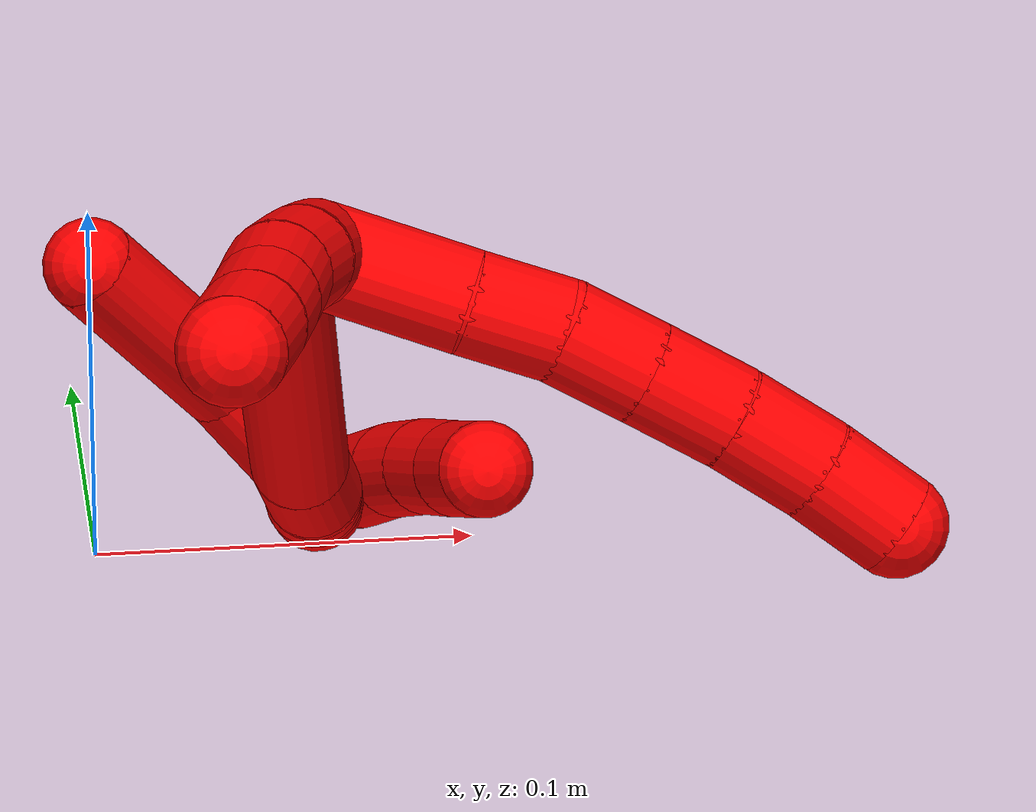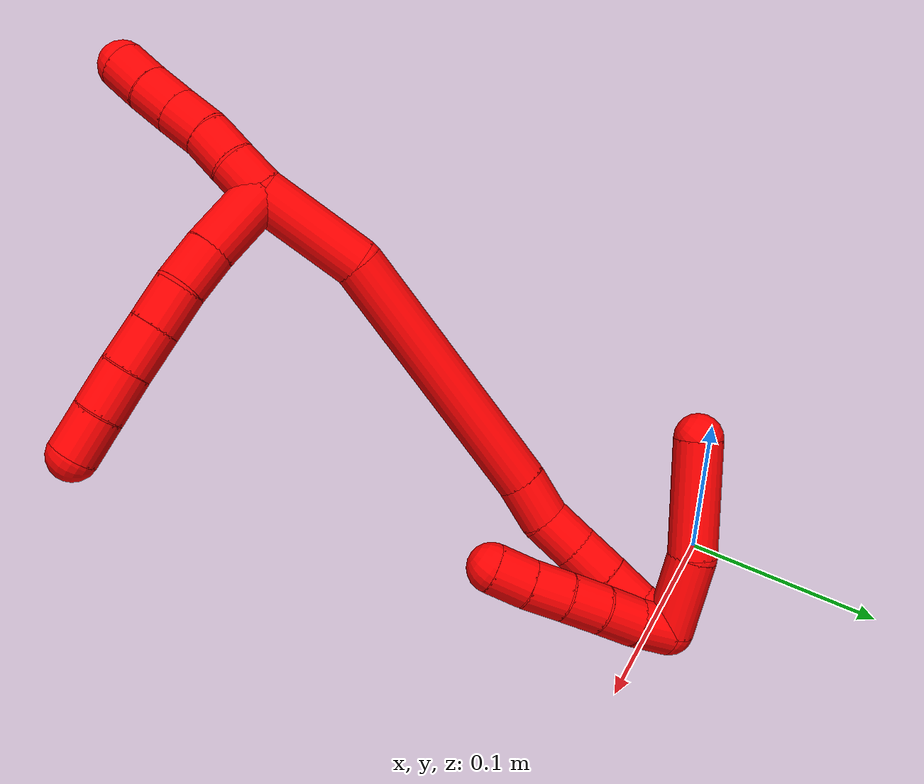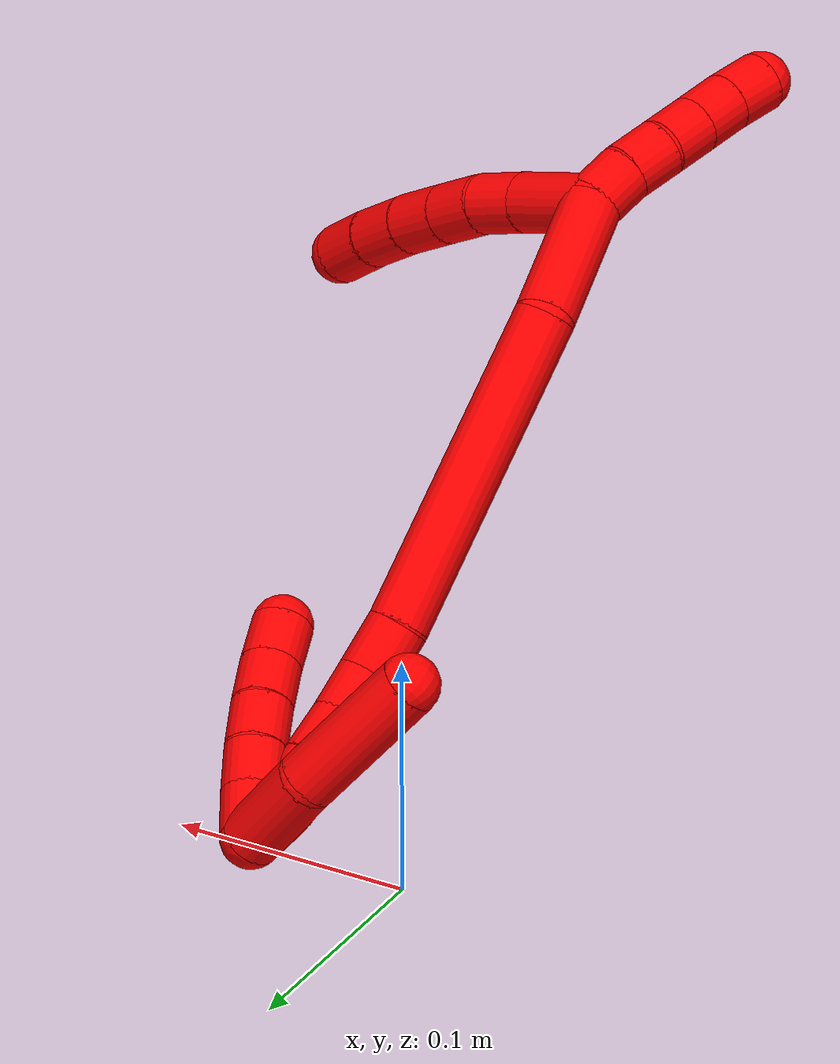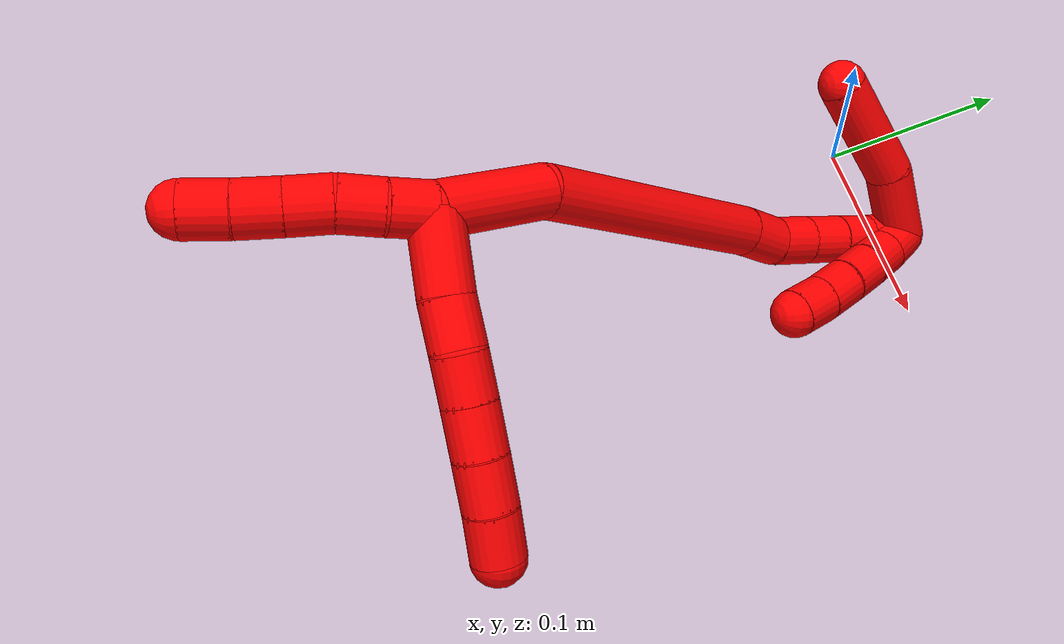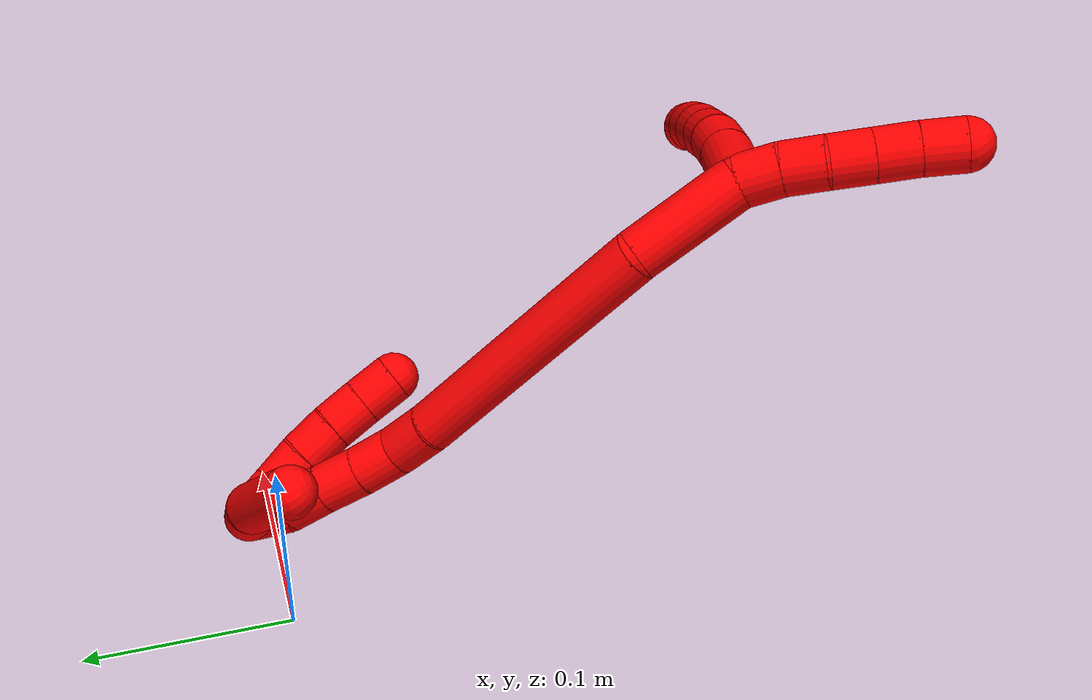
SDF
<sdf version="1.7">
 <world name="default">
  <model name="2">
   <static>0</static>
   <link name="2">
    <collision name="collision-cylinder-e_1_2_8">
     <pose>0.002097 -0.018207 0.000993 1.51633 0.114484 0.108425</pose>
     <geometry><cylinder><radius>0.0125</radius><length>0.036709</length></cylinder></geometry>
     <surface>
      <friction><ode><mu>1.16</mu><mu2>1.16</mu2><slip1>0</slip1><slip2>0</slip2></ode></friction>
      <contact><ode><kp>1e+06</kp><kd>1</kd><max_vel>0</max_vel><min_depth>0.001</min_depth></ode></contact>
     </surface>
    </collision>
    <visual name="visual-cylinder-e_1_2_8">
     <pose>0.002097 -0.018207 0.000993 1.51633 0.114484 0.108425</pose>
     <geometry><cylinder><radius>0.0125</radius><length>0.036709</length></cylinder></geometry>
     <material><ambient>1 0 0 1</ambient></material>
    </visual>
    <collision name="collision-cylinder-e_2_8_9">
     <pose>0.005669 -0.04754 0.001675 1.59868 0.131846 0.135563</pose>
     <geometry><cylinder><radius>0.0125</radius><length>0.022454</length></cylinder></geometry>
     <surface>
      <friction><ode><mu>1.16</mu><mu2>1.16</mu2><slip1>0</slip1><slip2>0</slip2></ode></friction>
      <contact><ode><kp>1e+06</kp><kd>1</kd><max_vel>0</max_vel><min_depth>0.001</min_depth></ode></contact>
     </surface>
    </collision>
    <visual name="visual-cylinder-e_2_8_9">
     <pose>0.005669 -0.04754 0.001675 1.59868 0.131846 0.135563</pose>
     <geometry><cylinder><radius>0.0125</radius><length>0.022454</length></cylinder></geometry>
     <material><ambient>1 0 0 1</ambient></material>
    </visual>
    <collision name="collision-cylinder-e_3_9_10">
     <pose>0.006763 -0.069457 0.00051 1.64986 -0.035287 -0.038192</pose>
     <geometry><cylinder><radius>0.0125</radius><length>0.021665</length></cylinder></geometry>
     <surface>
      <friction><ode><mu>1.16</mu><mu2>1.16</mu2><slip1>0</slip1><slip2>0</slip2></ode></friction>
      <contact><ode><kp>1e+06</kp><kd>1</kd><max_vel>0</max_vel><min_depth>0.001</min_depth></ode></contact>
     </surface>
    </collision>
    <visual name="visual-cylinder-e_3_9_10">
     <pose>0.006763 -0.069457 0.00051 1.64986 -0.035287 -0.038192</pose>
     <geometry><cylinder><radius>0.0125</radius><length>0.021665</length></cylinder></geometry>
     <material><ambient>1 0 0 1</ambient></material>
    </visual>
    <collision name="collision-cylinder-e_4_10_11">
     <pose>0.00583 -0.091737 -0.0012 1.64499 -0.047827 -0.051513</pose>
     <geometry><cylinder><radius>0.0125</radius><length>0.023067</length></cylinder></geometry>
     <surface>
      <friction><ode><mu>1.16</mu><mu2>1.16</mu2><slip1>0</slip1><slip2>0</slip2></ode></friction>
      <contact><ode><kp>1e+06</kp><kd>1</kd><max_vel>0</max_vel><min_depth>0.001</min_depth></ode></contact>
     </surface>
    </collision>
    <visual name="visual-cylinder-e_4_10_11">
     <pose>0.00583 -0.091737 -0.0012 1.64499 -0.047827 -0.051513</pose>
     <geometry><cylinder><radius>0.0125</radius><length>0.023067</length></cylinder></geometry>
     <material><ambient>1 0 0 1</ambient></material>
    </visual>
    <collision name="collision-cylinder-e_5_11_12">
     <pose>0.003953 -0.114764 -0.003109 1.66203 -0.113909 -0.12478</pose>
     <geometry><cylinder><radius>0.0125</radius><length>0.023325</length></cylinder></geometry>
     <surface>
      <friction><ode><mu>1.16</mu><mu2>1.16</mu2><slip1>0</slip1><slip2>0</slip2></ode></friction>
      <contact><ode><kp>1e+06</kp><kd>1</kd><max_vel>0</max_vel><min_depth>0.001</min_depth></ode></contact>
     </surface>
    </collision>
    <visual name="visual-cylinder-e_5_11_12">
     <pose>0.003953 -0.114764 -0.003109 1.66203 -0.113909 -0.12478</pose>
     <geometry><cylinder><radius>0.0125</radius><length>0.023325</length></cylinder></geometry>
     <material><ambient>1 0 0 1</ambient></material>
    </visual>
    <collision name="collision-cylinder-e_6_12_6">
     <pose>0.000531 -0.137458 -0.005115 1.65577 -0.185105 -0.201436</pose>
     <geometry><cylinder><radius>0.0125</radius><length>0.022781</length></cylinder></geometry>
     <surface>
      <friction><ode><mu>1.16</mu><mu2>1.16</mu2><slip1>0</slip1><slip2>0</slip2></ode></friction>
      <contact><ode><kp>1e+06</kp><kd>1</kd><max_vel>0</max_vel><min_depth>0.001</min_depth></ode></contact>
     </surface>
    </collision>
    <visual name="visual-cylinder-e_6_12_6">
     <pose>0.000531 -0.137458 -0.005115 1.65577 -0.185105 -0.201436</pose>
     <geometry><cylinder><radius>0.0125</radius><length>0.022781</length></cylinder></geometry>
     <material><ambient>1 0 0 1</ambient></material>
    </visual>
    <collision name="collision-cylinder-e_1_2_13">
     <pose>-0.001292 0.001814 0.009749 -0.183991 -0.129541 0.011968</pose>
     <geometry><cylinder><radius>0.0125</radius><length>0.02</length></cylinder></geometry>
     <surface>
      <friction><ode><mu>1.16</mu><mu2>1.16</mu2><slip1>0</slip1><slip2>0</slip2></ode></friction>
      <contact><ode><kp>1e+06</kp><kd>1</kd><max_vel>0</max_vel><min_depth>0.001</min_depth></ode></contact>
     </surface>
    </collision>
    <visual name="visual-cylinder-e_1_2_13">
     <pose>-0.001292 0.001814 0.009749 -0.183991 -0.129541 0.011968</pose>
     <geometry><cylinder><radius>0.0125</radius><length>0.02</length></cylinder></geometry>
     <material><ambient>1 0 0 1</ambient></material>
    </visual>
    <collision name="collision-cylinder-e_2_13_14">
     <pose>-0.005154 0.005744 0.028927 -0.220694 -0.259934 0.028961</pose>
     <geometry><cylinder><radius>0.0125</radius><length>0.02</length></cylinder></geometry>
     <surface>
      <friction><ode><mu>1.16</mu><mu2>1.16</mu2><slip1>0</slip1><slip2>0</slip2></ode></friction>
      <contact><ode><kp>1e+06</kp><kd>1</kd><max_vel>0</max_vel><min_depth>0.001</min_depth></ode></contact>
     </surface>
    </collision>
    <visual name="visual-cylinder-e_2_13_14">
     <pose>-0.005154 0.005744 0.028927 -0.220694 -0.259934 0.028961</pose>
     <geometry><cylinder><radius>0.0125</radius><length>0.02</length></cylinder></geometry>
     <material><ambient>1 0 0 1</ambient></material>
    </visual>
    <collision name="collision-cylinder-e_3_14_15">
     <pose>-0.010788 0.008519 0.047853 -0.069356 -0.311392 0.010891</pose>
     <geometry><cylinder><radius>0.0125</radius><length>0.02</length></cylinder></geometry>
     <surface>
      <friction><ode><mu>1.16</mu><mu2>1.16</mu2><slip1>0</slip1><slip2>0</slip2></ode></friction>
      <contact><ode><kp>1e+06</kp><kd>1</kd><max_vel>0</max_vel><min_depth>0.001</min_depth></ode></contact>
     </surface>
    </collision>
    <visual name="visual-cylinder-e_3_14_15">
     <pose>-0.010788 0.008519 0.047853 -0.069356 -0.311392 0.010891</pose>
     <geometry><cylinder><radius>0.0125</radius><length>0.02</length></cylinder></geometry>
     <material><ambient>1 0 0 1</ambient></material>
    </visual>
    <collision name="collision-cylinder-e_4_15_16">
     <pose>-0.016826 0.010005 0.066861 -0.08668 -0.302037 0.013199</pose>
     <geometry><cylinder><radius>0.0125</radius><length>0.02</length></cylinder></geometry>
     <surface>
      <friction><ode><mu>1.16</mu><mu2>1.16</mu2><slip1>0</slip1><slip2>0</slip2></ode></friction>
      <contact><ode><kp>1e+06</kp><kd>1</kd><max_vel>0</max_vel><min_depth>0.001</min_depth></ode></contact>
     </surface>
    </collision>
    <visual name="visual-cylinder-e_4_15_16">
     <pose>-0.016826 0.010005 0.066861 -0.08668 -0.302037 0.013199</pose>
     <geometry><cylinder><radius>0.0125</radius><length>0.02</length></cylinder></geometry>
     <material><ambient>1 0 0 1</ambient></material>
    </visual>
    <collision name="collision-cylinder-e_5_16_5">
     <pose>-0.023166 0.012108 0.085702 -0.135955 -0.343209 0.023597</pose>
     <geometry><cylinder><radius>0.0125</radius><length>0.02</length></cylinder></geometry>
     <surface>
      <friction><ode><mu>1.16</mu><mu2>1.16</mu2><slip1>0</slip1><slip2>0</slip2></ode></friction>
      <contact><ode><kp>1e+06</kp><kd>1</kd><max_vel>0</max_vel><min_depth>0.001</min_depth></ode></contact>
     </surface>
    </collision>
    <visual name="visual-cylinder-e_5_16_5">
     <pose>-0.023166 0.012108 0.085702 -0.135955 -0.343209 0.023597</pose>
     <geometry><cylinder><radius>0.0125</radius><length>0.02</length></cylinder></geometry>
     <material><ambient>1 0 0 1</ambient></material>
    </visual>
    <collision name="collision-cylinder-e_1_2_17">
     <pose>-0.004607 0.001115 -0.027323 -3.10081 -0.166917 2.66331</pose>
     <geometry><cylinder><radius>0.0125</radius><length>0.055462</length></cylinder></geometry>
     <surface>
      <friction><ode><mu>1.16</mu><mu2>1.16</mu2><slip1>0</slip1><slip2>0</slip2></ode></friction>
      <contact><ode><kp>1e+06</kp><kd>1</kd><max_vel>0</max_vel><min_depth>0.001</min_depth></ode></contact>
     </surface>
    </collision>
    <visual name="visual-cylinder-e_1_2_17">
     <pose>-0.004607 0.001115 -0.027323 -3.10081 -0.166917 2.66331</pose>
     <geometry><cylinder><radius>0.0125</radius><length>0.055462</length></cylinder></geometry>
     <material><ambient>1 0 0 1</ambient></material>
    </visual>
    <collision name="collision-cylinder-e_2_17_18">
     <pose>-0.029648 -0.013686 -0.117711 2.89439 -0.304392 -1.78001</pose>
     <geometry><cylinder><radius>0.0125</radius><length>0.136354</length></cylinder></geometry>
     <surface>
      <friction><ode><mu>1.16</mu><mu2>1.16</mu2><slip1>0</slip1><slip2>0</slip2></ode></friction>
      <contact><ode><kp>1e+06</kp><kd>1</kd><max_vel>0</max_vel><min_depth>0.001</min_depth></ode></contact>
     </surface>
    </collision>
    <visual name="visual-cylinder-e_2_17_18">
     <pose>-0.029648 -0.013686 -0.117711 2.89439 -0.304392 -1.78001</pose>
     <geometry><cylinder><radius>0.0125</radius><length>0.136354</length></cylinder></geometry>
     <material><ambient>1 0 0 1</ambient></material>
    </visual>
    <collision name="collision-cylinder-e_3_18_19">
     <pose>-0.053013 -0.033507 -0.191428 2.7901 -0.252844 -1.24243</pose>
     <geometry><cylinder><radius>0.0125</radius><length>0.023434</length></cylinder></geometry>
     <surface>
      <friction><ode><mu>1.16</mu><mu2>1.16</mu2><slip1>0</slip1><slip2>0</slip2></ode></friction>
      <contact><ode><kp>1e+06</kp><kd>1</kd><max_vel>0</max_vel><min_depth>0.001</min_depth></ode></contact>
     </surface>
    </collision>
    <visual name="visual-cylinder-e_3_18_19">
     <pose>-0.053013 -0.033507 -0.191428 2.7901 -0.252844 -1.24243</pose>
     <geometry><cylinder><radius>0.0125</radius><length>0.023434</length></cylinder></geometry>
     <material><ambient>1 0 0 1</ambient></material>
    </visual>
    <collision name="collision-cylinder-e_4_19_20">
     <pose>-0.057 -0.038507 -0.212719 3.03916 -0.098398 -1.53056</pose>
     <geometry><cylinder><radius>0.0125</radius><length>0.021496</length></cylinder></geometry>
     <surface>
      <friction><ode><mu>1.16</mu><mu2>1.16</mu2><slip1>0</slip1><slip2>0</slip2></ode></friction>
      <contact><ode><kp>1e+06</kp><kd>1</kd><max_vel>0</max_vel><min_depth>0.001</min_depth></ode></contact>
     </surface>
    </collision>
    <visual name="visual-cylinder-e_4_19_20">
     <pose>-0.057 -0.038507 -0.212719 3.03916 -0.098398 -1.53056</pose>
     <geometry><cylinder><radius>0.0125</radius><length>0.021496</length></cylinder></geometry>
     <material><ambient>1 0 0 1</ambient></material>
    </visual>
    <collision name="collision-cylinder-e_5_20_21">
     <pose>-0.058469 -0.040732 -0.234026 3.03588 -0.038465 -0.697408</pose>
     <geometry><cylinder><radius>0.0125</radius><length>0.02147</length></cylinder></geometry>
     <surface>
      <friction><ode><mu>1.16</mu><mu2>1.16</mu2><slip1>0</slip1><slip2>0</slip2></ode></friction>
      <contact><ode><kp>1e+06</kp><kd>1</kd><max_vel>0</max_vel><min_depth>0.001</min_depth></ode></contact>
     </surface>
    </collision>
    <visual name="visual-cylinder-e_5_20_21">
     <pose>-0.058469 -0.040732 -0.234026 3.03588 -0.038465 -0.697408</pose>
     <geometry><cylinder><radius>0.0125</radius><length>0.02147</length></cylinder></geometry>
     <material><ambient>1 0 0 1</ambient></material>
    </visual>
    <collision name="collision-cylinder-e_6_21_22">
     <pose>-0.059715 -0.043024 -0.25532 3.03293 -0.077855 -1.24295</pose>
     <geometry><cylinder><radius>0.0125</radius><length>0.021444</length></cylinder></geometry>
     <surface>
      <friction><ode><mu>1.16</mu><mu2>1.16</mu2><slip1>0</slip1><slip2>0</slip2></ode></friction>
      <contact><ode><kp>1e+06</kp><kd>1</kd><max_vel>0</max_vel><min_depth>0.001</min_depth></ode></contact>
     </surface>
    </collision>
    <visual name="visual-cylinder-e_6_21_22">
     <pose>-0.059715 -0.043024 -0.25532 3.03293 -0.077855 -1.24295</pose>
     <geometry><cylinder><radius>0.0125</radius><length>0.021444</length></cylinder></geometry>
     <material><ambient>1 0 0 1</ambient></material>
    </visual>
    <collision name="collision-cylinder-e_7_22_1">
     <pose>-0.0583 -0.044545 -0.275858 3.10507 0.223004 2.81825</pose>
     <geometry><cylinder><radius>0.0125</radius><length>0.020339</length></cylinder></geometry>
     <surface>
      <friction><ode><mu>1.16</mu><mu2>1.16</mu2><slip1>0</slip1><slip2>0</slip2></ode></friction>
      <contact><ode><kp>1e+06</kp><kd>1</kd><max_vel>0</max_vel><min_depth>0.001</min_depth></ode></contact>
     </surface>
    </collision>
    <visual name="visual-cylinder-e_7_22_1">
     <pose>-0.0583 -0.044545 -0.275858 3.10507 0.223004 2.81825</pose>
     <geometry><cylinder><radius>0.0125</radius><length>0.020339</length></cylinder></geometry>
     <material><ambient>1 0 0 1</ambient></material>
    </visual>
    <collision name="collision-cylinder-e_1_1_23">
     <pose>-0.053161 -0.048618 -0.276944 0.398029 0.293172 0.059538</pose>
     <geometry><cylinder><radius>0.0125</radius><length>0.02</length></cylinder></geometry>
     <surface>
      <friction><ode><mu>1.16</mu><mu2>1.16</mu2><slip1>0</slip1><slip2>0</slip2></ode></friction>
      <contact><ode><kp>1e+06</kp><kd>1</kd><max_vel>0</max_vel><min_depth>0.001</min_depth></ode></contact>
     </surface>
    </collision>
    <visual name="visual-cylinder-e_1_1_23">
     <pose>-0.053161 -0.048618 -0.276944 0.398029 0.293172 0.059538</pose>
     <geometry><cylinder><radius>0.0125</radius><length>0.02</length></cylinder></geometry>
     <material><ambient>1 0 0 1</ambient></material>
    </visual>
    <collision name="collision-cylinder-e_2_23_24">
     <pose>-0.046902 -0.055022 -0.259097 0.290197 0.343655 0.050706</pose>
     <geometry><cylinder><radius>0.0125</radius><length>0.02</length></cylinder></geometry>
     <surface>
      <friction><ode><mu>1.16</mu><mu2>1.16</mu2><slip1>0</slip1><slip2>0</slip2></ode></friction>
      <contact><ode><kp>1e+06</kp><kd>1</kd><max_vel>0</max_vel><min_depth>0.001</min_depth></ode></contact>
     </surface>
    </collision>
    <visual name="visual-cylinder-e_2_23_24">
     <pose>-0.046902 -0.055022 -0.259097 0.290197 0.343655 0.050706</pose>
     <geometry><cylinder><radius>0.0125</radius><length>0.02</length></cylinder></geometry>
     <material><ambient>1 0 0 1</ambient></material>
    </visual>
    <collision name="collision-cylinder-e_3_24_25">
     <pose>-0.041162 -0.060624 -0.240806 0.303944 0.239305 0.036822</pose>
     <geometry><cylinder><radius>0.0125</radius><length>0.02</length></cylinder></geometry>
     <surface>
      <friction><ode><mu>1.16</mu><mu2>1.16</mu2><slip1>0</slip1><slip2>0</slip2></ode></friction>
      <contact><ode><kp>1e+06</kp><kd>1</kd><max_vel>0</max_vel><min_depth>0.001</min_depth></ode></contact>
     </surface>
    </collision>
    <visual name="visual-cylinder-e_3_24_25">
     <pose>-0.041162 -0.060624 -0.240806 0.303944 0.239305 0.036822</pose>
     <geometry><cylinder><radius>0.0125</radius><length>0.02</length></cylinder></geometry>
     <material><ambient>1 0 0 1</ambient></material>
    </visual>
    <collision name="collision-cylinder-e_4_25_26">
     <pose>-0.03721 -0.066571 -0.222142 0.312898 0.158885 0.025114</pose>
     <geometry><cylinder><radius>0.0125</radius><length>0.02</length></cylinder></geometry>
     <surface>
      <friction><ode><mu>1.16</mu><mu2>1.16</mu2><slip1>0</slip1><slip2>0</slip2></ode></friction>
      <contact><ode><kp>1e+06</kp><kd>1</kd><max_vel>0</max_vel><min_depth>0.001</min_depth></ode></contact>
     </surface>
    </collision>
    <visual name="visual-cylinder-e_4_25_26">
     <pose>-0.03721 -0.066571 -0.222142 0.312898 0.158885 0.025114</pose>
     <geometry><cylinder><radius>0.0125</radius><length>0.02</length></cylinder></geometry>
     <material><ambient>1 0 0 1</ambient></material>
    </visual>
    <collision name="collision-cylinder-e_5_26_4">
     <pose>-0.034086 -0.071851 -0.203124 0.228703 0.154811 0.017816</pose>
     <geometry><cylinder><radius>0.0125</radius><length>0.02</length></cylinder></geometry>
     <surface>
      <friction><ode><mu>1.16</mu><mu2>1.16</mu2><slip1>0</slip1><slip2>0</slip2></ode></friction>
      <contact><ode><kp>1e+06</kp><kd>1</kd><max_vel>0</max_vel><min_depth>0.001</min_depth></ode></contact>
     </surface>
    </collision>
    <visual name="visual-cylinder-e_5_26_4">
     <pose>-0.034086 -0.071851 -0.203124 0.228703 0.154811 0.017816</pose>
     <geometry><cylinder><radius>0.0125</radius><length>0.02</length></cylinder></geometry>
     <material><ambient>1 0 0 1</ambient></material>
    </visual>
    <collision name="collision-cylinder-e_1_1_27">
     <pose>-0.048769 -0.027362 -0.278581 -1.18196 0.366716 -0.24758</pose>
     <geometry><cylinder><radius>0.0125</radius><length>0.040621</length></cylinder></geometry>
     <surface>
      <friction><ode><mu>1.16</mu><mu2>1.16</mu2><slip1>0</slip1><slip2>0</slip2></ode></friction>
      <contact><ode><kp>1e+06</kp><kd>1</kd><max_vel>0</max_vel><min_depth>0.001</min_depth></ode></contact>
     </surface>
    </collision>
    <visual name="visual-cylinder-e_1_1_27">
     <pose>-0.048769 -0.027362 -0.278581 -1.18196 0.366716 -0.24758</pose>
     <geometry><cylinder><radius>0.0125</radius><length>0.040621</length></cylinder></geometry>
     <material><ambient>1 0 0 1</ambient></material>
    </visual>
    <collision name="collision-cylinder-e_2_27_3">
     <pose>-0.034479 0.013594 -0.254533 -0.946669 0.238262 -0.122458</pose>
     <geometry><cylinder><radius>0.0125</radius><length>0.059379</length></cylinder></geometry>
     <surface>
      <friction><ode><mu>1.16</mu><mu2>1.16</mu2><slip1>0</slip1><slip2>0</slip2></ode></friction>
      <contact><ode><kp>1e+06</kp><kd>1</kd><max_vel>0</max_vel><min_depth>0.001</min_depth></ode></contact>
     </surface>
    </collision>
    <visual name="visual-cylinder-e_2_27_3">
     <pose>-0.034479 0.013594 -0.254533 -0.946669 0.238262 -0.122458</pose>
     <geometry><cylinder><radius>0.0125</radius><length>0.059379</length></cylinder></geometry>
     <material><ambient>1 0 0 1</ambient></material>
    </visual>
    <collision name="collision-sphere-3">
     <pose>-0.027472 0.037006 -0.237673 0 -0 0</pose>
     <geometry><sphere><radius>0.0125</radius></sphere></geometry>
     <surface>
      <friction><ode><mu>1.16</mu><mu2>1.16</mu2><slip1>0</slip1><slip2>0</slip2></ode></friction>
      <contact><ode><kp>1e+06</kp><kd>1</kd><max_vel>0</max_vel><min_depth>0.001</min_depth></ode></contact>
     </surface>
    </collision>
    <visual name="visual-sphere-3">
     <pose>-0.027472 0.037006 -0.237673 0 -0 0</pose>
     <geometry><sphere><radius>0.0125</radius></sphere></geometry>
     <material><ambient>1 0 0 1</ambient></material>
    </visual>
    <collision name="collision-sphere-27">
     <pose>-0.041486 -0.009817 -0.271393 0 -0 0</pose>
     <geometry><sphere><radius>0.0125</radius></sphere></geometry>
     <surface>
      <friction><ode><mu>1.16</mu><mu2>1.16</mu2><slip1>0</slip1><slip2>0</slip2></ode></friction>
      <contact><ode><kp>1e+06</kp><kd>1</kd><max_vel>0</max_vel><min_depth>0.001</min_depth></ode></contact>
     </surface>
    </collision>
    <visual name="visual-sphere-27">
     <pose>-0.041486 -0.009817 -0.271393 0 -0 0</pose>
     <geometry><sphere><radius>0.0125</radius></sphere></geometry>
     <material><ambient>1 0 0 1</ambient></material>
    </visual>
    <collision name="collision-sphere-4">
     <pose>-0.032544 -0.074091 -0.193501 0 -0 0</pose>
     <geometry><sphere><radius>0.0125</radius></sphere></geometry>
     <surface>
      <friction><ode><mu>1.16</mu><mu2>1.16</mu2><slip1>0</slip1><slip2>0</slip2></ode></friction>
      <contact><ode><kp>1e+06</kp><kd>1</kd><max_vel>0</max_vel><min_depth>0.001</min_depth></ode></contact>
     </surface>
    </collision>
    <visual name="visual-sphere-4">
     <pose>-0.032544 -0.074091 -0.193501 0 -0 0</pose>
     <geometry><sphere><radius>0.0125</radius></sphere></geometry>
     <material><ambient>1 0 0 1</ambient></material>
    </visual>
    <collision name="collision-sphere-26">
     <pose>-0.035628 -0.069611 -0.212747 0 -0 0</pose>
     <geometry><sphere><radius>0.0125</radius></sphere></geometry>
     <surface>
      <friction><ode><mu>1.16</mu><mu2>1.16</mu2><slip1>0</slip1><slip2>0</slip2></ode></friction>
      <contact><ode><kp>1e+06</kp><kd>1</kd><max_vel>0</max_vel><min_depth>0.001</min_depth></ode></contact>
     </surface>
    </collision>
    <visual name="visual-sphere-26">
     <pose>-0.035628 -0.069611 -0.212747 0 -0 0</pose>
     <geometry><sphere><radius>0.0125</radius></sphere></geometry>
     <material><ambient>1 0 0 1</ambient></material>
    </visual>
    <collision name="collision-sphere-25">
     <pose>-0.038792 -0.063532 -0.231536 0 -0 0</pose>
     <geometry><sphere><radius>0.0125</radius></sphere></geometry>
     <surface>
      <friction><ode><mu>1.16</mu><mu2>1.16</mu2><slip1>0</slip1><slip2>0</slip2></ode></friction>
      <contact><ode><kp>1e+06</kp><kd>1</kd><max_vel>0</max_vel><min_depth>0.001</min_depth></ode></contact>
     </surface>
    </collision>
    <visual name="visual-sphere-25">
     <pose>-0.038792 -0.063532 -0.231536 0 -0 0</pose>
     <geometry><sphere><radius>0.0125</radius></sphere></geometry>
     <material><ambient>1 0 0 1</ambient></material>
    </visual>
    <collision name="collision-sphere-24">
     <pose>-0.043533 -0.057717 -0.250076 0 -0 0</pose>
     <geometry><sphere><radius>0.0125</radius></sphere></geometry>
     <surface>
      <friction><ode><mu>1.16</mu><mu2>1.16</mu2><slip1>0</slip1><slip2>0</slip2></ode></friction>
      <contact><ode><kp>1e+06</kp><kd>1</kd><max_vel>0</max_vel><min_depth>0.001</min_depth></ode></contact>
     </surface>
    </collision>
    <visual name="visual-sphere-24">
     <pose>-0.043533 -0.057717 -0.250076 0 -0 0</pose>
     <geometry><sphere><radius>0.0125</radius></sphere></geometry>
     <material><ambient>1 0 0 1</ambient></material>
    </visual>
    <collision name="collision-sphere-23">
     <pose>-0.050271 -0.052328 -0.268119 0 -0 0</pose>
     <geometry><sphere><radius>0.0125</radius></sphere></geometry>
     <surface>
      <friction><ode><mu>1.16</mu><mu2>1.16</mu2><slip1>0</slip1><slip2>0</slip2></ode></friction>
      <contact><ode><kp>1e+06</kp><kd>1</kd><max_vel>0</max_vel><min_depth>0.001</min_depth></ode></contact>
     </surface>
    </collision>
    <visual name="visual-sphere-23">
     <pose>-0.050271 -0.052328 -0.268119 0 -0 0</pose>
     <geometry><sphere><radius>0.0125</radius></sphere></geometry>
     <material><ambient>1 0 0 1</ambient></material>
    </visual>
    <collision name="collision-sphere-1">
     <pose>-0.056051 -0.044907 -0.285769 0 -0 0</pose>
     <geometry><sphere><radius>0.0125</radius></sphere></geometry>
     <surface>
      <friction><ode><mu>1.16</mu><mu2>1.16</mu2><slip1>0</slip1><slip2>0</slip2></ode></friction>
      <contact><ode><kp>1e+06</kp><kd>1</kd><max_vel>0</max_vel><min_depth>0.001</min_depth></ode></contact>
     </surface>
    </collision>
    <visual name="visual-sphere-1">
     <pose>-0.056051 -0.044907 -0.285769 0 -0 0</pose>
     <geometry><sphere><radius>0.0125</radius></sphere></geometry>
     <material><ambient>1 0 0 1</ambient></material>
    </visual>
    <collision name="collision-sphere-22">
     <pose>-0.060549 -0.044183 -0.265946 0 -0 0</pose>
     <geometry><sphere><radius>0.0125</radius></sphere></geometry>
     <surface>
      <friction><ode><mu>1.16</mu><mu2>1.16</mu2><slip1>0</slip1><slip2>0</slip2></ode></friction>
      <contact><ode><kp>1e+06</kp><kd>1</kd><max_vel>0</max_vel><min_depth>0.001</min_depth></ode></contact>
     </surface>
    </collision>
    <visual name="visual-sphere-22">
     <pose>-0.060549 -0.044183 -0.265946 0 -0 0</pose>
     <geometry><sphere><radius>0.0125</radius></sphere></geometry>
     <material><ambient>1 0 0 1</ambient></material>
    </visual>
    <collision name="collision-sphere-21">
     <pose>-0.058881 -0.041864 -0.244693 0 -0 0</pose>
     <geometry><sphere><radius>0.0125</radius></sphere></geometry>
     <surface>
      <friction><ode><mu>1.16</mu><mu2>1.16</mu2><slip1>0</slip1><slip2>0</slip2></ode></friction>
      <contact><ode><kp>1e+06</kp><kd>1</kd><max_vel>0</max_vel><min_depth>0.001</min_depth></ode></contact>
     </surface>
    </collision>
    <visual name="visual-sphere-21">
     <pose>-0.058881 -0.041864 -0.244693 0 -0 0</pose>
     <geometry><sphere><radius>0.0125</radius></sphere></geometry>
     <material><ambient>1 0 0 1</ambient></material>
    </visual>
    <collision name="collision-sphere-12">
     <pose>0.002627 -0.126303 -0.004165 0 -0 0</pose>
     <geometry><sphere><radius>0.0125</radius></sphere></geometry>
     <surface>
      <friction><ode><mu>1.16</mu><mu2>1.16</mu2><slip1>0</slip1><slip2>0</slip2></ode></friction>
      <contact><ode><kp>1e+06</kp><kd>1</kd><max_vel>0</max_vel><min_depth>0.001</min_depth></ode></contact>
     </surface>
    </collision>
    <visual name="visual-sphere-12">
     <pose>0.002627 -0.126303 -0.004165 0 -0 0</pose>
     <geometry><sphere><radius>0.0125</radius></sphere></geometry>
     <material><ambient>1 0 0 1</ambient></material>
    </visual>
    <collision name="collision-sphere-11">
     <pose>0.005278 -0.103226 -0.002054 0 -0 0</pose>
     <geometry><sphere><radius>0.0125</radius></sphere></geometry>
     <surface>
      <friction><ode><mu>1.16</mu><mu2>1.16</mu2><slip1>0</slip1><slip2>0</slip2></ode></friction>
      <contact><ode><kp>1e+06</kp><kd>1</kd><max_vel>0</max_vel><min_depth>0.001</min_depth></ode></contact>
     </surface>
    </collision>
    <visual name="visual-sphere-11">
     <pose>0.005278 -0.103226 -0.002054 0 -0 0</pose>
     <geometry><sphere><radius>0.0125</radius></sphere></geometry>
     <material><ambient>1 0 0 1</ambient></material>
    </visual>
    <collision name="collision-sphere-10">
     <pose>0.006381 -0.080249 -0.000346 0 -0 0</pose>
     <geometry><sphere><radius>0.0125</radius></sphere></geometry>
     <surface>
      <friction><ode><mu>1.16</mu><mu2>1.16</mu2><slip1>0</slip1><slip2>0</slip2></ode></friction>
      <contact><ode><kp>1e+06</kp><kd>1</kd><max_vel>0</max_vel><min_depth>0.001</min_depth></ode></contact>
     </surface>
    </collision>
    <visual name="visual-sphere-10">
     <pose>0.006381 -0.080249 -0.000346 0 -0 0</pose>
     <geometry><sphere><radius>0.0125</radius></sphere></geometry>
     <material><ambient>1 0 0 1</ambient></material>
    </visual>
    <collision name="collision-sphere-9">
     <pose>0.007145 -0.058665 0.001365 0 -0 0</pose>
     <geometry><sphere><radius>0.0125</radius></sphere></geometry>
     <surface>
      <friction><ode><mu>1.16</mu><mu2>1.16</mu2><slip1>0</slip1><slip2>0</slip2></ode></friction>
      <contact><ode><kp>1e+06</kp><kd>1</kd><max_vel>0</max_vel><min_depth>0.001</min_depth></ode></contact>
     </surface>
    </collision>
    <visual name="visual-sphere-9">
     <pose>0.007145 -0.058665 0.001365 0 -0 0</pose>
     <geometry><sphere><radius>0.0125</radius></sphere></geometry>
     <material><ambient>1 0 0 1</ambient></material>
    </visual>
    <collision name="collision-sphere-2">
     <geometry><sphere><radius>0.0125</radius></sphere></geometry>
     <surface>
      <friction><ode><mu>1.16</mu><mu2>1.16</mu2><slip1>0</slip1><slip2>0</slip2></ode></friction>
      <contact><ode><kp>1e+06</kp><kd>1</kd><max_vel>0</max_vel><min_depth>0.001</min_depth></ode></contact>
     </surface>
    </collision>
    <visual name="visual-sphere-2">
     <geometry><sphere><radius>0.0125</radius></sphere></geometry>
     <material><ambient>1 0 0 1</ambient></material>
    </visual>
    <collision name="collision-sphere-19">
     <pose>-0.055944 -0.037413 -0.202079 0 -0 0</pose>
     <geometry><sphere><radius>0.0125</radius></sphere></geometry>
     <surface>
      <friction><ode><mu>1.16</mu><mu2>1.16</mu2><slip1>0</slip1><slip2>0</slip2></ode></friction>
      <contact><ode><kp>1e+06</kp><kd>1</kd><max_vel>0</max_vel><min_depth>0.001</min_depth></ode></contact>
     </surface>
    </collision>
    <visual name="visual-sphere-19">
     <pose>-0.055944 -0.037413 -0.202079 0 -0 0</pose>
     <geometry><sphere><radius>0.0125</radius></sphere></geometry>
     <material><ambient>1 0 0 1</ambient></material>
    </visual>
    <collision name="collision-sphere-8">
     <pose>0.004193 -0.036415 0.001985 0 -0 0</pose>
     <geometry><sphere><radius>0.0125</radius></sphere></geometry>
     <surface>
      <friction><ode><mu>1.16</mu><mu2>1.16</mu2><slip1>0</slip1><slip2>0</slip2></ode></friction>
      <contact><ode><kp>1e+06</kp><kd>1</kd><max_vel>0</max_vel><min_depth>0.001</min_depth></ode></contact>
     </surface>
    </collision>
    <visual name="visual-sphere-8">
     <pose>0.004193 -0.036415 0.001985 0 -0 0</pose>
     <geometry><sphere><radius>0.0125</radius></sphere></geometry>
     <material><ambient>1 0 0 1</ambient></material>
    </visual>
    <collision name="collision-sphere-6">
     <pose>-0.001566 -0.148614 -0.006065 0 -0 0</pose>
     <geometry><sphere><radius>0.0125</radius></sphere></geometry>
     <surface>
      <friction><ode><mu>1.16</mu><mu2>1.16</mu2><slip1>0</slip1><slip2>0</slip2></ode></friction>
      <contact><ode><kp>1e+06</kp><kd>1</kd><max_vel>0</max_vel><min_depth>0.001</min_depth></ode></contact>
     </surface>
    </collision>
    <visual name="visual-sphere-6">
     <pose>-0.001566 -0.148614 -0.006065 0 -0 0</pose>
     <geometry><sphere><radius>0.0125</radius></sphere></geometry>
     <material><ambient>1 0 0 1</ambient></material>
    </visual>
    <collision name="collision-sphere-13">
     <pose>-0.002584 0.003628 0.019498 0 -0 0</pose>
     <geometry><sphere><radius>0.0125</radius></sphere></geometry>
     <surface>
      <friction><ode><mu>1.16</mu><mu2>1.16</mu2><slip1>0</slip1><slip2>0</slip2></ode></friction>
      <contact><ode><kp>1e+06</kp><kd>1</kd><max_vel>0</max_vel><min_depth>0.001</min_depth></ode></contact>
     </surface>
    </collision>
    <visual name="visual-sphere-13">
     <pose>-0.002584 0.003628 0.019498 0 -0 0</pose>
     <geometry><sphere><radius>0.0125</radius></sphere></geometry>
     <material><ambient>1 0 0 1</ambient></material>
    </visual>
    <collision name="collision-sphere-14">
     <pose>-0.007724 0.007859 0.038357 0 -0 0</pose>
     <geometry><sphere><radius>0.0125</radius></sphere></geometry>
     <surface>
      <friction><ode><mu>1.16</mu><mu2>1.16</mu2><slip1>0</slip1><slip2>0</slip2></ode></friction>
      <contact><ode><kp>1e+06</kp><kd>1</kd><max_vel>0</max_vel><min_depth>0.001</min_depth></ode></contact>
     </surface>
    </collision>
    <visual name="visual-sphere-14">
     <pose>-0.007724 0.007859 0.038357 0 -0 0</pose>
     <geometry><sphere><radius>0.0125</radius></sphere></geometry>
     <material><ambient>1 0 0 1</ambient></material>
    </visual>
    <collision name="collision-sphere-15">
     <pose>-0.013852 0.009179 0.057349 0 -0 0</pose>
     <geometry><sphere><radius>0.0125</radius></sphere></geometry>
     <surface>
      <friction><ode><mu>1.16</mu><mu2>1.16</mu2><slip1>0</slip1><slip2>0</slip2></ode></friction>
      <contact><ode><kp>1e+06</kp><kd>1</kd><max_vel>0</max_vel><min_depth>0.001</min_depth></ode></contact>
     </surface>
    </collision>
    <visual name="visual-sphere-15">
     <pose>-0.013852 0.009179 0.057349 0 -0 0</pose>
     <geometry><sphere><radius>0.0125</radius></sphere></geometry>
     <material><ambient>1 0 0 1</ambient></material>
    </visual>
    <collision name="collision-sphere-16">
     <pose>-0.019801 0.010832 0.076372 0 -0 0</pose>
     <geometry><sphere><radius>0.0125</radius></sphere></geometry>
     <surface>
      <friction><ode><mu>1.16</mu><mu2>1.16</mu2><slip1>0</slip1><slip2>0</slip2></ode></friction>
      <contact><ode><kp>1e+06</kp><kd>1</kd><max_vel>0</max_vel><min_depth>0.001</min_depth></ode></contact>
     </surface>
    </collision>
    <visual name="visual-sphere-16">
     <pose>-0.019801 0.010832 0.076372 0 -0 0</pose>
     <geometry><sphere><radius>0.0125</radius></sphere></geometry>
     <material><ambient>1 0 0 1</ambient></material>
    </visual>
    <collision name="collision-sphere-5">
     <pose>-0.026531 0.013385 0.095032 0 -0 0</pose>
     <geometry><sphere><radius>0.0125</radius></sphere></geometry>
     <surface>
      <friction><ode><mu>1.16</mu><mu2>1.16</mu2><slip1>0</slip1><slip2>0</slip2></ode></friction>
      <contact><ode><kp>1e+06</kp><kd>1</kd><max_vel>0</max_vel><min_depth>0.001</min_depth></ode></contact>
     </surface>
    </collision>
    <visual name="visual-sphere-5">
     <pose>-0.026531 0.013385 0.095032 0 -0 0</pose>
     <geometry><sphere><radius>0.0125</radius></sphere></geometry>
     <material><ambient>1 0 0 1</ambient></material>
    </visual>
    <collision name="collision-sphere-17">
     <pose>-0.009215 0.00223 -0.054645 0 -0 0</pose>
     <geometry><sphere><radius>0.0125</radius></sphere></geometry>
     <surface>
      <friction><ode><mu>1.16</mu><mu2>1.16</mu2><slip1>0</slip1><slip2>0</slip2></ode></friction>
      <contact><ode><kp>1e+06</kp><kd>1</kd><max_vel>0</max_vel><min_depth>0.001</min_depth></ode></contact>
     </surface>
    </collision>
    <visual name="visual-sphere-17">
     <pose>-0.009215 0.00223 -0.054645 0 -0 0</pose>
     <geometry><sphere><radius>0.0125</radius></sphere></geometry>
     <material><ambient>1 0 0 1</ambient></material>
    </visual>
    <collision name="collision-sphere-18">
     <pose>-0.050082 -0.029601 -0.180777 0 -0 0</pose>
     <geometry><sphere><radius>0.0125</radius></sphere></geometry>
     <surface>
      <friction><ode><mu>1.16</mu><mu2>1.16</mu2><slip1>0</slip1><slip2>0</slip2></ode></friction>
      <contact><ode><kp>1e+06</kp><kd>1</kd><max_vel>0</max_vel><min_depth>0.001</min_depth></ode></contact>
     </surface>
    </collision>
    <visual name="visual-sphere-18">
     <pose>-0.050082 -0.029601 -0.180777 0 -0 0</pose>
     <geometry><sphere><radius>0.0125</radius></sphere></geometry>
     <material><ambient>1 0 0 1</ambient></material>
    </visual>
    <collision name="collision-sphere-20">
     <pose>-0.058056 -0.039601 -0.223359 0 -0 0</pose>
     <geometry><sphere><radius>0.0125</radius></sphere></geometry>
     <surface>
      <friction><ode><mu>1.16</mu><mu2>1.16</mu2><slip1>0</slip1><slip2>0</slip2></ode></friction>
      <contact><ode><kp>1e+06</kp><kd>1</kd><max_vel>0</max_vel><min_depth>0.001</min_depth></ode></contact>
     </surface>
    </collision>
    <visual name="visual-sphere-20">
     <pose>-0.058056 -0.039601 -0.223359 0 -0 0</pose>
     <geometry><sphere><radius>0.0125</radius></sphere></geometry>
     <material><ambient>1 0 0 1</ambient></material>
    </visual>
    <inertial>
     <pose>-0.025762 -0.030506 -0.118076 0 -0 0</pose>
     <mass>0.75</mass>
     <inertia>
      <ixx>-0.000208</ixx>
      <ixy>0</ixy>
      <ixz>0</ixz>
      <iyy>-0.000112</iyy>
      <iyz>0</iyz>
      <izz>0.000102</izz>
     </inertia>
    </inertial>
   </link>
   <pose>0.039148 -0.22088 0.191645 0.787739 -0.957575 0.653515</pose>
  </model>
 </world>
</sdf>
